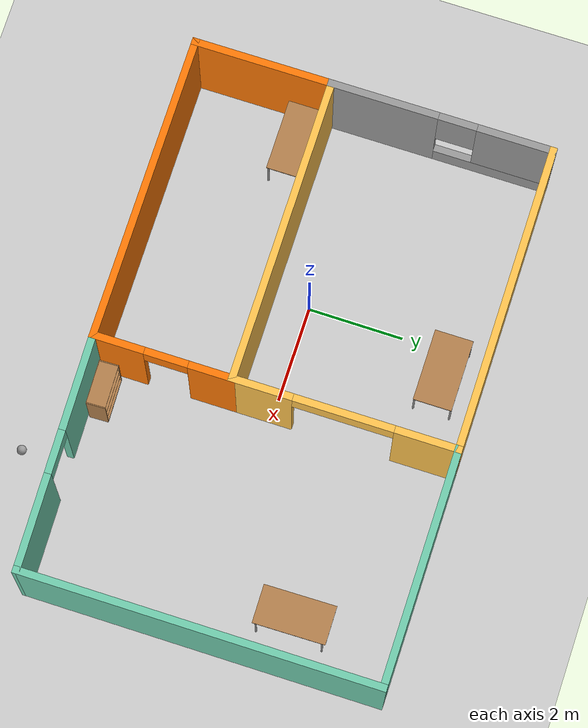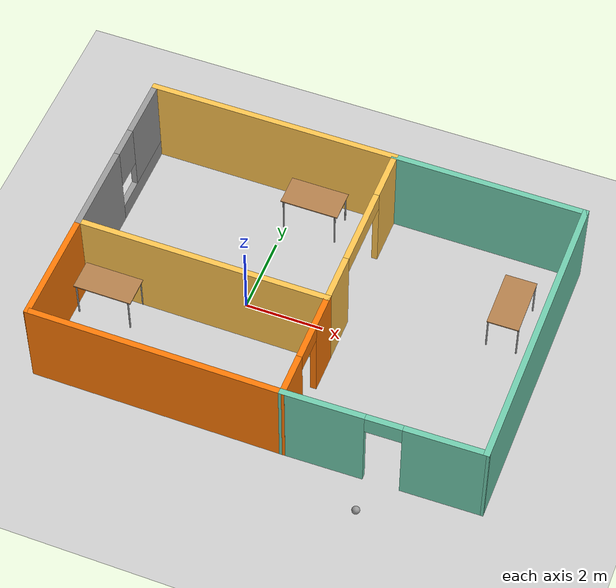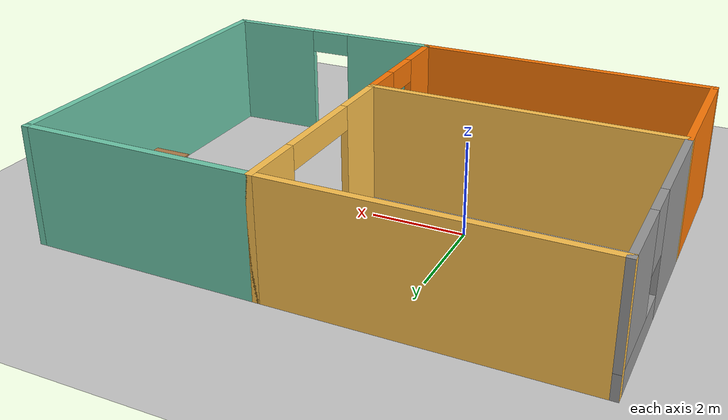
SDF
<sdf version="1.6">
 <world name="default">
  <light name="sun" type="directional">
   <pose>0 0 10 0 -0 0</pose>
   <diffuse>0.8 0.8 0.8 1</diffuse>
   <specular>0.2 0.2 0.2 1</specular>
   <attenuation>
    <range>1000</range>
    <constant>0.9</constant>
    <linear>0.01</linear>
    <quadratic>0.001</quadratic>
   </attenuation>
   <direction>-0.5 0.1 -0.9</direction>
  </light>
  <model name="ground_plane">
   <static>1</static>
   <link name="link">
    <collision name="collision">
     <geometry><plane><normal>0 0 1</normal><size>100 100</size></plane></geometry>
     <surface>
      <contact><collide_bitmask>65535</collide_bitmask></contact>
      <friction><ode><mu>100</mu><mu2>50</mu2></ode></friction>
     </surface>
    </collision>
    <visual name="visual">
     <cast_shadows>0</cast_shadows>
     <geometry><plane><normal>0 0 1</normal><size>100 100</size></plane></geometry>
     <material>
      <script><uri>file://media/materials/scripts/gazebo.material</uri><name>Gazebo/Grey</name></script>
     </material>
    </visual>
   </link>
  </model>
  <gravity>0 0 -9.8</gravity>
  <magnetic_field>6e-06 2.3e-05 -4.2e-05</magnetic_field>
  <atmosphere type="adiabatic"/>
  <physics name="default_physics" default="0" type="ode">
   <max_step_size>0.001</max_step_size>
   <real_time_factor>1</real_time_factor>
   <real_time_update_rate>1000</real_time_update_rate>
  </physics>
  <scene><ambient>0.4 0.4 0.4 1</ambient><background>0.7 0.7 0.7 1</background><shadows>1</shadows></scene>
  <spherical_coordinates>
   <surface_model>EARTH_WGS84</surface_model>
   <latitude_deg>0</latitude_deg>
   <longitude_deg>0</longitude_deg>
   <elevation>0</elevation>
   <heading_deg>0</heading_deg>
  </spherical_coordinates>
  <model name="trial2">
   <pose>1.67077 0.064235 0 0 -0 0</pose>
   <link name="Wall_0">
    <collision name="Wall_0_Collision">
     <geometry><box><size>6.5 0.15 2.5</size></box></geometry>
     <pose>0 0 1.25 0 -0 0</pose>
    </collision>
    <visual name="Wall_0_Visual">
     <pose>0 0 1.25 0 -0 0</pose>
     <geometry><box><size>6.5 0.15 2.5</size></box></geometry>
     <material>
      <script><uri>file://media/materials/scripts/gazebo.material</uri><name>Gazebo/Grey</name></script>
      <ambient>1 0.764706 0.305882 1</ambient>
     </material>
     <meta><layer>0</layer></meta>
    </visual>
    <pose>-2.42577 -0.874235 0 0 -0 0</pose>
   </link>
   <link name="Wall_1">
    <pose>0.749235 -2.29923 0 0 0 -1.5708</pose>
    <visual name="Wall_1_Visual_0">
     <pose>-1.01357 0 1.25 0 -0 0</pose>
     <geometry><box><size>0.972854 0.15 2.5</size></box></geometry>
     <material>
      <script><uri>file://media/materials/scripts/gazebo.material</uri><name>Gazebo/Grey</name></script>
      <ambient>0.996078 0.47451 0.0196078 1</ambient>
     </material>
     <meta><layer>0</layer></meta>
    </visual>
    <collision name="Wall_1_Collision_0">
     <geometry><box><size>0.972854 0.15 2.5</size></box></geometry>
     <pose>-1.01357 0 1.25 0 -0 0</pose>
    </collision>
    <visual name="Wall_1_Visual_1">
     <pose>0.936427 0 1.25 0 -0 0</pose>
     <geometry><box><size>1.12715 0.15 2.5</size></box></geometry>
     <material>
      <script><uri>file://media/materials/scripts/gazebo.material</uri><name>Gazebo/Grey</name></script>
      <ambient>0.996078 0.47451 0.0196078 1</ambient>
     </material>
     <meta><layer>0</layer></meta>
    </visual>
    <collision name="Wall_1_Collision_1">
     <geometry><box><size>1.12715 0.15 2.5</size></box></geometry>
     <pose>0.936427 0 1.25 0 -0 0</pose>
    </collision>
    <visual name="Wall_1_Visual_2">
     <pose>-0.077146 0 2.25 0 -0 0</pose>
     <geometry><box><size>0.9 0.15 0.5</size></box></geometry>
     <material>
      <script><uri>file://media/materials/scripts/gazebo.material</uri><name>Gazebo/Grey</name></script>
      <ambient>0.996078 0.47451 0.0196078 1</ambient>
     </material>
     <meta><layer>0</layer></meta>
    </visual>
    <collision name="Wall_1_Collision_2">
     <geometry><box><size>0.9 0.15 0.5</size></box></geometry>
     <pose>-0.077146 0 2.25 0 -0 0</pose>
    </collision>
   </link>
   <link name="Wall_10">
    <collision name="Wall_10_Collision">
     <geometry><box><size>7.5 0.15 2.5</size></box></geometry>
     <pose>0 0 1.25 0 -0 0</pose>
    </collision>
    <visual name="Wall_10_Visual">
     <pose>0 0 1.25 0 -0 0</pose>
     <geometry><box><size>7.5 0.15 2.5</size></box></geometry>
     <material>
      <script><uri>file://media/materials/scripts/gazebo.material</uri><name>Gazebo/Grey</name></script>
      <ambient>0.435294 0.796078 0.67451 1</ambient>
     </material>
     <meta><layer>0</layer></meta>
    </visual>
    <pose>5.59924 0.050765 0 0 0 -1.5708</pose>
   </link>
   <link name="Wall_11">
    <pose>3.17423 -3.67423 0 0 0 -3.12098</pose>
    <visual name="Wall_11_Visual_0">
     <pose>-1.48021 0 1.25 0 -0 0</pose>
     <geometry><box><size>2.04062 0.15 2.5</size></box></geometry>
     <material>
      <script><uri>file://media/materials/scripts/gazebo.material</uri><name>Gazebo/Grey</name></script>
      <ambient>0.435294 0.796078 0.67451 1</ambient>
     </material>
     <meta><layer>0</layer></meta>
    </visual>
    <collision name="Wall_11_Collision_0">
     <geometry><box><size>2.04062 0.15 2.5</size></box></geometry>
     <pose>-1.48021 0 1.25 0 -0 0</pose>
    </collision>
    <visual name="Wall_11_Visual_1">
     <pose>1.47031 0 1.25 0 -0 0</pose>
     <geometry><box><size>2.06041 0.15 2.5</size></box></geometry>
     <material>
      <script><uri>file://media/materials/scripts/gazebo.material</uri><name>Gazebo/Grey</name></script>
      <ambient>0.435294 0.796078 0.67451 1</ambient>
     </material>
     <meta><layer>0</layer></meta>
    </visual>
    <collision name="Wall_11_Collision_1">
     <geometry><box><size>2.06041 0.15 2.5</size></box></geometry>
     <pose>1.47031 0 1.25 0 -0 0</pose>
    </collision>
    <visual name="Wall_11_Visual_2">
     <pose>-0.009898 0 2.25 0 -0 0</pose>
     <geometry><box><size>0.9 0.15 0.5</size></box></geometry>
     <material>
      <script><uri>file://media/materials/scripts/gazebo.material</uri><name>Gazebo/Grey</name></script>
      <ambient>0.435294 0.796078 0.67451 1</ambient>
     </material>
     <meta><layer>0</layer></meta>
    </visual>
    <collision name="Wall_11_Collision_2">
     <geometry><box><size>0.9 0.15 0.5</size></box></geometry>
     <pose>-0.009898 0 2.25 0 -0 0</pose>
    </collision>
   </link>
   <link name="Wall_2">
    <collision name="Wall_2_Collision">
     <geometry><box><size>6.5 0.15 2.5</size></box></geometry>
     <pose>0 0 1.25 0 -0 0</pose>
    </collision>
    <visual name="Wall_2_Visual">
     <pose>0 0 1.25 0 -0 0</pose>
     <geometry><box><size>6.5 0.15 2.5</size></box></geometry>
     <material>
      <script><uri>file://media/materials/scripts/gazebo.material</uri><name>Gazebo/Grey</name></script>
      <ambient>0.996078 0.47451 0.0196078 1</ambient>
     </material>
     <meta><layer>0</layer></meta>
    </visual>
    <pose>-2.42577 -3.72424 0 0 -0 3.14159</pose>
   </link>
   <link name="Wall_3">
    <collision name="Wall_3_Collision">
     <geometry><box><size>3 0.15 2.5</size></box></geometry>
     <pose>0 0 1.25 0 -0 0</pose>
    </collision>
    <visual name="Wall_3_Visual">
     <pose>0 0 1.25 0 -0 0</pose>
     <geometry><box><size>3 0.15 2.5</size></box></geometry>
     <material>
      <script><uri>file://media/materials/scripts/gazebo.material</uri><name>Gazebo/Grey</name></script>
      <ambient>0.996078 0.47451 0.0196078 1</ambient>
     </material>
     <meta><layer>0</layer></meta>
    </visual>
    <pose>-5.60076 -2.29923 0 0 -0 1.5708</pose>
   </link>
   <link name="Wall_5">
    <pose>-5.60076 1.42576 0 0 -0 1.5708</pose>
    <visual name="Wall_5_Visual_0">
     <pose>-1.22018 0 1.25 0 -0 0</pose>
     <geometry><box><size>2.30963 0.15 2.5</size></box></geometry>
     <material>
      <script><uri>file://media/materials/scripts/gazebo.material</uri><name>Gazebo/Grey</name></script>
      <ambient>1 1 1 1</ambient>
     </material>
     <meta><layer>0</layer></meta>
    </visual>
    <collision name="Wall_5_Collision_0">
     <geometry><box><size>2.30963 0.15 2.5</size></box></geometry>
     <pose>-1.22018 0 1.25 0 -0 0</pose>
    </collision>
    <visual name="Wall_5_Visual_1">
     <pose>1.15482 0 0.25 0 -0 0</pose>
     <geometry><box><size>2.44037 0.15 0.5</size></box></geometry>
     <material>
      <script><uri>file://media/materials/scripts/gazebo.material</uri><name>Gazebo/Grey</name></script>
      <ambient>1 1 1 1</ambient>
     </material>
     <meta><layer>0</layer></meta>
    </visual>
    <collision name="Wall_5_Collision_1">
     <geometry><box><size>2.44037 0.15 0.5</size></box></geometry>
     <pose>1.15482 0 0.25 0 -0 0</pose>
    </collision>
    <visual name="Wall_5_Visual_2">
     <pose>1.55482 0 1.5 0 -0 0</pose>
     <geometry><box><size>1.64037 0.15 2</size></box></geometry>
     <material>
      <script><uri>file://media/materials/scripts/gazebo.material</uri><name>Gazebo/Grey</name></script>
      <ambient>1 1 1 1</ambient>
     </material>
     <meta><layer>0</layer></meta>
    </visual>
    <collision name="Wall_5_Collision_2">
     <geometry><box><size>1.64037 0.15 2</size></box></geometry>
     <pose>1.55482 0 1.5 0 -0 0</pose>
    </collision>
    <visual name="Wall_5_Visual_3">
     <pose>0.334633 0 1.9 0 -0 0</pose>
     <geometry><box><size>0.8 0.15 1.2</size></box></geometry>
     <material>
      <script><uri>file://media/materials/scripts/gazebo.material</uri><name>Gazebo/Grey</name></script>
      <ambient>1 1 1 1</ambient>
     </material>
     <meta><layer>0</layer></meta>
    </visual>
    <collision name="Wall_5_Collision_3">
     <geometry><box><size>0.8 0.15 1.2</size></box></geometry>
     <pose>0.334633 0 1.9 0 -0 0</pose>
    </collision>
   </link>
   <link name="Wall_6">
    <collision name="Wall_6_Collision">
     <geometry><box><size>6.5 0.15 2.5</size></box></geometry>
     <pose>0 0 1.25 0 -0 0</pose>
    </collision>
    <visual name="Wall_6_Visual">
     <pose>0 0 1.25 0 -0 0</pose>
     <geometry><box><size>6.5 0.15 2.5</size></box></geometry>
     <material>
      <script><uri>file://media/materials/scripts/gazebo.material</uri><name>Gazebo/Grey</name></script>
      <ambient>1 0.764706 0.305882 1</ambient>
     </material>
     <meta><layer>0</layer></meta>
    </visual>
    <pose>-2.42577 3.72576 0 0 -0 0</pose>
   </link>
   <link name="Wall_7">
    <pose>0.749235 1.42576 0 0 0 -1.5708</pose>
    <visual name="Wall_7_Visual_0">
     <pose>-1.69044 0 1.25 0 -0 0</pose>
     <geometry><box><size>1.36912 0.15 2.5</size></box></geometry>
     <material>
      <script><uri>file://media/materials/scripts/gazebo.material</uri><name>Gazebo/Grey</name></script>
      <ambient>1 0.764706 0.305882 1</ambient>
     </material>
     <meta><layer>0</layer></meta>
    </visual>
    <collision name="Wall_7_Collision_0">
     <geometry><box><size>1.36912 0.15 2.5</size></box></geometry>
     <pose>-1.69044 0 1.25 0 -0 0</pose>
    </collision>
    <visual name="Wall_7_Visual_1">
     <pose>1.71785 0 1.25 0 -0 0</pose>
     <geometry><box><size>1.31429 0.15 2.5</size></box></geometry>
     <material>
      <script><uri>file://media/materials/scripts/gazebo.material</uri><name>Gazebo/Grey</name></script>
      <ambient>1 0.764706 0.305882 1</ambient>
     </material>
     <meta><layer>0</layer></meta>
    </visual>
    <collision name="Wall_7_Collision_1">
     <geometry><box><size>1.31429 0.15 2.5</size></box></geometry>
     <pose>1.71785 0 1.25 0 -0 0</pose>
    </collision>
    <visual name="Wall_7_Visual_2">
     <pose>0.027411 0 2.25 0 -0 0</pose>
     <geometry><box><size>2.06659 0.15 0.5</size></box></geometry>
     <material>
      <script><uri>file://media/materials/scripts/gazebo.material</uri><name>Gazebo/Grey</name></script>
      <ambient>1 0.764706 0.305882 1</ambient>
     </material>
     <meta><layer>0</layer></meta>
    </visual>
    <collision name="Wall_7_Collision_2">
     <geometry><box><size>2.06659 0.15 0.5</size></box></geometry>
     <pose>0.027411 0 2.25 0 -0 0</pose>
    </collision>
   </link>
   <link name="Wall_9">
    <collision name="Wall_9_Collision">
     <geometry><box><size>5 0.15 2.5</size></box></geometry>
     <pose>0 0 1.25 0 -0 0</pose>
    </collision>
    <visual name="Wall_9_Visual">
     <pose>0 0 1.25 0 -0 0</pose>
     <geometry><box><size>5 0.15 2.5</size></box></geometry>
     <material>
      <script><uri>file://media/materials/scripts/gazebo.material</uri><name>Gazebo/Grey</name></script>
      <ambient>0.435294 0.796078 0.67451 1</ambient>
     </material>
     <meta><layer>0</layer></meta>
    </visual>
    <pose>3.17423 3.72576 0 0 -0 0</pose>
   </link>
   <static>1</static>
  </model>
  <model name="table_0">
   <static>1</static>
   <link name="link">
    <collision name="surface">
     <pose>0 0 1 0 -0 0</pose>
     <geometry><box><size>1.5 0.8 0.03</size></box></geometry>
     <surface><friction><ode><mu>0.6</mu><mu2>0.6</mu2></ode></friction></surface>
    </collision>
    <visual name="visual1">
     <pose>0 0 1 0 -0 0</pose>
     <geometry><box><size>1.5 0.8 0.03</size></box></geometry>
     <material>
      <script><uri>file://media/materials/scripts/gazebo.material</uri><name>Gazebo/Wood</name></script>
     </material>
    </visual>
    <collision name="front_left_leg">
     <pose>0.68 0.38 0.5 0 -0 0</pose>
     <geometry><cylinder><radius>0.02</radius><length>1</length></cylinder></geometry>
    </collision>
    <visual name="front_left_leg">
     <pose>0.68 0.38 0.5 0 -0 0</pose>
     <geometry><cylinder><radius>0.02</radius><length>1</length></cylinder></geometry>
     <material>
      <script><uri>file://media/materials/scripts/gazebo.material</uri><name>Gazebo/Grey</name></script>
     </material>
    </visual>
    <collision name="front_right_leg">
     <pose>0.68 -0.38 0.5 0 -0 0</pose>
     <geometry><cylinder><radius>0.02</radius><length>1</length></cylinder></geometry>
    </collision>
    <visual name="front_right_leg">
     <pose>0.68 -0.38 0.5 0 -0 0</pose>
     <geometry><cylinder><radius>0.02</radius><length>1</length></cylinder></geometry>
     <material>
      <script><uri>file://media/materials/scripts/gazebo.material</uri><name>Gazebo/Grey</name></script>
     </material>
    </visual>
    <collision name="back_right_leg">
     <pose>-0.68 -0.38 0.5 0 -0 0</pose>
     <geometry><cylinder><radius>0.02</radius><length>1</length></cylinder></geometry>
    </collision>
    <visual name="back_right_leg">
     <pose>-0.68 -0.38 0.5 0 -0 0</pose>
     <geometry><cylinder><radius>0.02</radius><length>1</length></cylinder></geometry>
     <material>
      <script><uri>file://media/materials/scripts/gazebo.material</uri><name>Gazebo/Grey</name></script>
     </material>
    </visual>
    <collision name="back_left_leg">
     <pose>-0.68 0.38 0.5 0 -0 0</pose>
     <geometry><cylinder><radius>0.02</radius><length>1</length></cylinder></geometry>
    </collision>
    <visual name="back_left_leg">
     <pose>-0.68 0.38 0.5 0 -0 0</pose>
     <geometry><cylinder><radius>0.02</radius><length>1</length></cylinder></geometry>
     <material>
      <script><uri>file://media/materials/scripts/gazebo.material</uri><name>Gazebo/Grey</name></script>
     </material>
    </visual>
   </link>
   <pose>6.22251 1.69144 0 0 0 -1.55826</pose>
  </model>
  <model name="table_2">
   <static>1</static>
   <link name="link">
    <collision name="surface">
     <pose>0 0 1 0 -0 0</pose>
     <geometry><box><size>1.5 0.8 0.03</size></box></geometry>
     <surface><friction><ode><mu>0.6</mu><mu2>0.6</mu2></ode></friction></surface>
    </collision>
    <visual name="visual1">
     <pose>0 0 1 0 -0 0</pose>
     <geometry><box><size>1.5 0.8 0.03</size></box></geometry>
     <material>
      <script><uri>file://media/materials/scripts/gazebo.material</uri><name>Gazebo/Wood</name></script>
     </material>
    </visual>
    <collision name="front_left_leg">
     <pose>0.68 0.38 0.5 0 -0 0</pose>
     <geometry><cylinder><radius>0.02</radius><length>1</length></cylinder></geometry>
    </collision>
    <visual name="front_left_leg">
     <pose>0.68 0.38 0.5 0 -0 0</pose>
     <geometry><cylinder><radius>0.02</radius><length>1</length></cylinder></geometry>
     <material>
      <script><uri>file://media/materials/scripts/gazebo.material</uri><name>Gazebo/Grey</name></script>
     </material>
    </visual>
    <collision name="front_right_leg">
     <pose>0.68 -0.38 0.5 0 -0 0</pose>
     <geometry><cylinder><radius>0.02</radius><length>1</length></cylinder></geometry>
    </collision>
    <visual name="front_right_leg">
     <pose>0.68 -0.38 0.5 0 -0 0</pose>
     <geometry><cylinder><radius>0.02</radius><length>1</length></cylinder></geometry>
     <material>
      <script><uri>file://media/materials/scripts/gazebo.material</uri><name>Gazebo/Grey</name></script>
     </material>
    </visual>
    <collision name="back_right_leg">
     <pose>-0.68 -0.38 0.5 0 -0 0</pose>
     <geometry><cylinder><radius>0.02</radius><length>1</length></cylinder></geometry>
    </collision>
    <visual name="back_right_leg">
     <pose>-0.68 -0.38 0.5 0 -0 0</pose>
     <geometry><cylinder><radius>0.02</radius><length>1</length></cylinder></geometry>
     <material>
      <script><uri>file://media/materials/scripts/gazebo.material</uri><name>Gazebo/Grey</name></script>
     </material>
    </visual>
    <collision name="back_left_leg">
     <pose>-0.68 0.38 0.5 0 -0 0</pose>
     <geometry><cylinder><radius>0.02</radius><length>1</length></cylinder></geometry>
    </collision>
    <visual name="back_left_leg">
     <pose>-0.68 0.38 0.5 0 -0 0</pose>
     <geometry><cylinder><radius>0.02</radius><length>1</length></cylinder></geometry>
     <material>
      <script><uri>file://media/materials/scripts/gazebo.material</uri><name>Gazebo/Grey</name></script>
     </material>
    </visual>
   </link>
   <pose>0.633094 3.00487 0 0 -0 0</pose>
  </model>
  <model name="table_5">
   <static>1</static>
   <link name="link">
    <collision name="surface">
     <pose>0 0 1 0 -0 0</pose>
     <geometry><box><size>1.5 0.8 0.03</size></box></geometry>
     <surface><friction><ode><mu>0.6</mu><mu2>0.6</mu2></ode></friction></surface>
    </collision>
    <visual name="visual1">
     <pose>0 0 1 0 -0 0</pose>
     <geometry><box><size>1.5 0.8 0.03</size></box></geometry>
     <material>
      <script><uri>file://media/materials/scripts/gazebo.material</uri><name>Gazebo/Wood</name></script>
     </material>
    </visual>
    <collision name="front_left_leg">
     <pose>0.68 0.38 0.5 0 -0 0</pose>
     <geometry><cylinder><radius>0.02</radius><length>1</length></cylinder></geometry>
    </collision>
    <visual name="front_left_leg">
     <pose>0.68 0.38 0.5 0 -0 0</pose>
     <geometry><cylinder><radius>0.02</radius><length>1</length></cylinder></geometry>
     <material>
      <script><uri>file://media/materials/scripts/gazebo.material</uri><name>Gazebo/Grey</name></script>
     </material>
    </visual>
    <collision name="front_right_leg">
     <pose>0.68 -0.38 0.5 0 -0 0</pose>
     <geometry><cylinder><radius>0.02</radius><length>1</length></cylinder></geometry>
    </collision>
    <visual name="front_right_leg">
     <pose>0.68 -0.38 0.5 0 -0 0</pose>
     <geometry><cylinder><radius>0.02</radius><length>1</length></cylinder></geometry>
     <material>
      <script><uri>file://media/materials/scripts/gazebo.material</uri><name>Gazebo/Grey</name></script>
     </material>
    </visual>
    <collision name="back_right_leg">
     <pose>-0.68 -0.38 0.5 0 -0 0</pose>
     <geometry><cylinder><radius>0.02</radius><length>1</length></cylinder></geometry>
    </collision>
    <visual name="back_right_leg">
     <pose>-0.68 -0.38 0.5 0 -0 0</pose>
     <geometry><cylinder><radius>0.02</radius><length>1</length></cylinder></geometry>
     <material>
      <script><uri>file://media/materials/scripts/gazebo.material</uri><name>Gazebo/Grey</name></script>
     </material>
    </visual>
    <collision name="back_left_leg">
     <pose>-0.68 0.38 0.5 0 -0 0</pose>
     <geometry><cylinder><radius>0.02</radius><length>1</length></cylinder></geometry>
    </collision>
    <visual name="back_left_leg">
     <pose>-0.68 0.38 0.5 0 -0 0</pose>
     <geometry><cylinder><radius>0.02</radius><length>1</length></cylinder></geometry>
     <material>
      <script><uri>file://media/materials/scripts/gazebo.material</uri><name>Gazebo/Grey</name></script>
     </material>
    </visual>
   </link>
   <pose>-3.06158 -1.2567 0 0 -0 0</pose>
  </model>
  <model name="my_ball">
   <link name="link_0">
    <inertial>
     <mass>1</mass>
     <inertia><ixx>0.1</ixx><ixy>0</ixy><ixz>0</ixz><iyy>0.1</iyy><iyz>0</iyz><izz>0.1</izz></inertia>
    </inertial>
    <visual name="visual">
     <geometry><sphere><radius>0.1</radius></sphere></geometry>
     <material>
      <lighting>1</lighting>
      <script><uri>file://media/materials/scripts/gazebo.material</uri><name>Gazebo/Grey</name></script>
      <shader type="pixel"><normal_map>__default__</normal_map></shader>
      <ambient>1 1 1 1</ambient>
      <diffuse>1 1 1 1</diffuse>
      <specular>1 1 1 1</specular>
      <emissive>1 1 1 1</emissive>
     </material>
    </visual>
    <collision name="collision">
     <geometry><sphere><radius>0.1</radius></sphere></geometry>
     <surface>
      <friction>
       <ode><mu>1</mu><mu2>1</mu2><fdir1>0 0 0</fdir1><slip1>0</slip1><slip2>0</slip2></ode>
       <torsional>
        <coefficient>1</coefficient>
        <patch_radius>0</patch_radius>
        <surface_radius>0</surface_radius>
        <use_patch_radius>1</use_patch_radius>
        <ode><slip>0</slip></ode>
       </torsional>
      </friction>
      <bounce><restitution_coefficient>0</restitution_coefficient><threshold>1e+06</threshold></bounce>
      <contact>
       <collide_without_contact>0</collide_without_contact>
       <collide_without_contact_bitmask>1</collide_without_contact_bitmask>
       <collide_bitmask>1</collide_bitmask>
       <ode>
        <soft_cfm>0</soft_cfm>
        <soft_erp>0.2</soft_erp>
        <kp>1e+13</kp>
        <kd>1</kd>
        <max_vel>0.01</max_vel>
        <min_depth>0</min_depth>
       </ode>
       <bullet>
        <split_impulse>1</split_impulse>
        <split_impulse_penetration_threshold>-0.01</split_impulse_penetration_threshold>
        <soft_cfm>0</soft_cfm>
        <soft_erp>0.2</soft_erp>
        <kp>1e+13</kp>
        <kd>1</kd>
       </bullet>
      </contact>
     </surface>
    </collision>
   </link>
   <static>0</static>
   <pose>4.58031 -4.59256 0.1 0 -0 0</pose>
  </model>
  <model name="bookshelf">
   <static>1</static>
   <link name="link">
    <inertial><mass>1</mass></inertial>
    <collision name="back">
     <pose>0 0.005 0.6 0 -0 0</pose>
     <geometry><box><size>0.9 0.01 1.2</size></box></geometry>
    </collision>
    <visual name="visual1">
     <pose>0 0.005 0.6 0 -0 0</pose>
     <geometry><box><size>0.9 0.01 1.2</size></box></geometry>
     <material>
      <script><uri>file://media/materials/scripts/gazebo.material</uri><name>Gazebo/Wood</name></script>
     </material>
    </visual>
    <collision name="left_side">
     <pose>0.45 -0.195 0.6 0 -0 0</pose>
     <geometry><box><size>0.02 0.4 1.2</size></box></geometry>
    </collision>
    <visual name="visual2">
     <pose>0.45 -0.195 0.6 0 -0 0</pose>
     <geometry><box><size>0.02 0.4 1.2</size></box></geometry>
     <material>
      <script><uri>file://media/materials/scripts/gazebo.material</uri><name>Gazebo/Wood</name></script>
     </material>
    </visual>
    <collision name="right_side">
     <pose>-0.45 -0.195 0.6 0 -0 0</pose>
     <geometry><box><size>0.02 0.4 1.2</size></box></geometry>
    </collision>
    <visual name="visual3">
     <pose>-0.45 -0.195 0.6 0 -0 0</pose>
     <geometry><box><size>0.02 0.4 1.2</size></box></geometry>
     <material>
      <script><uri>file://media/materials/scripts/gazebo.material</uri><name>Gazebo/Wood</name></script>
     </material>
    </visual>
    <collision name="bottom">
     <pose>0 -0.195 0.03 0 -0 0</pose>
     <geometry><box><size>0.88 0.4 0.06</size></box></geometry>
    </collision>
    <visual name="visual4">
     <pose>0 -0.195 0.03 0 -0 0</pose>
     <geometry><box><size>0.88 0.4 0.06</size></box></geometry>
     <material>
      <script><uri>file://media/materials/scripts/gazebo.material</uri><name>Gazebo/Wood</name></script>
     </material>
    </visual>
    <collision name="top">
     <pose>0 -0.195 1.19 0 -0 0</pose>
     <geometry><box><size>0.88 0.4 0.02</size></box></geometry>
    </collision>
    <visual name="visual5">
     <pose>0 -0.195 1.19 0 -0 0</pose>
     <geometry><box><size>0.88 0.4 0.02</size></box></geometry>
     <material>
      <script><uri>file://media/materials/scripts/gazebo.material</uri><name>Gazebo/Wood</name></script>
     </material>
    </visual>
    <collision name="low_shelf">
     <pose>0 -0.195 0.43 0 -0 0</pose>
     <geometry><box><size>0.88 0.4 0.02</size></box></geometry>
    </collision>
    <visual name="visual6">
     <pose>0 -0.195 0.43 0 -0 0</pose>
     <geometry><box><size>0.88 0.4 0.02</size></box></geometry>
     <material>
      <script><uri>file://media/materials/scripts/gazebo.material</uri><name>Gazebo/Wood</name></script>
     </material>
    </visual>
    <collision name="high_shelf">
     <pose>0 -0.195 0.8 0 -0 0</pose>
     <geometry><box><size>0.88 0.4 0.02</size></box></geometry>
    </collision>
    <visual name="visual7">
     <pose>0 -0.195 0.8 0 -0 0</pose>
     <geometry><box><size>0.88 0.4 0.02</size></box></geometry>
     <material>
      <script><uri>file://media/materials/scripts/gazebo.material</uri><name>Gazebo/Wood</name></script>
     </material>
    </visual>
   </link>
   <pose>3.03506 -3.5356 0 0 0 -3.11337</pose>
  </model>
 </world>
</sdf>
